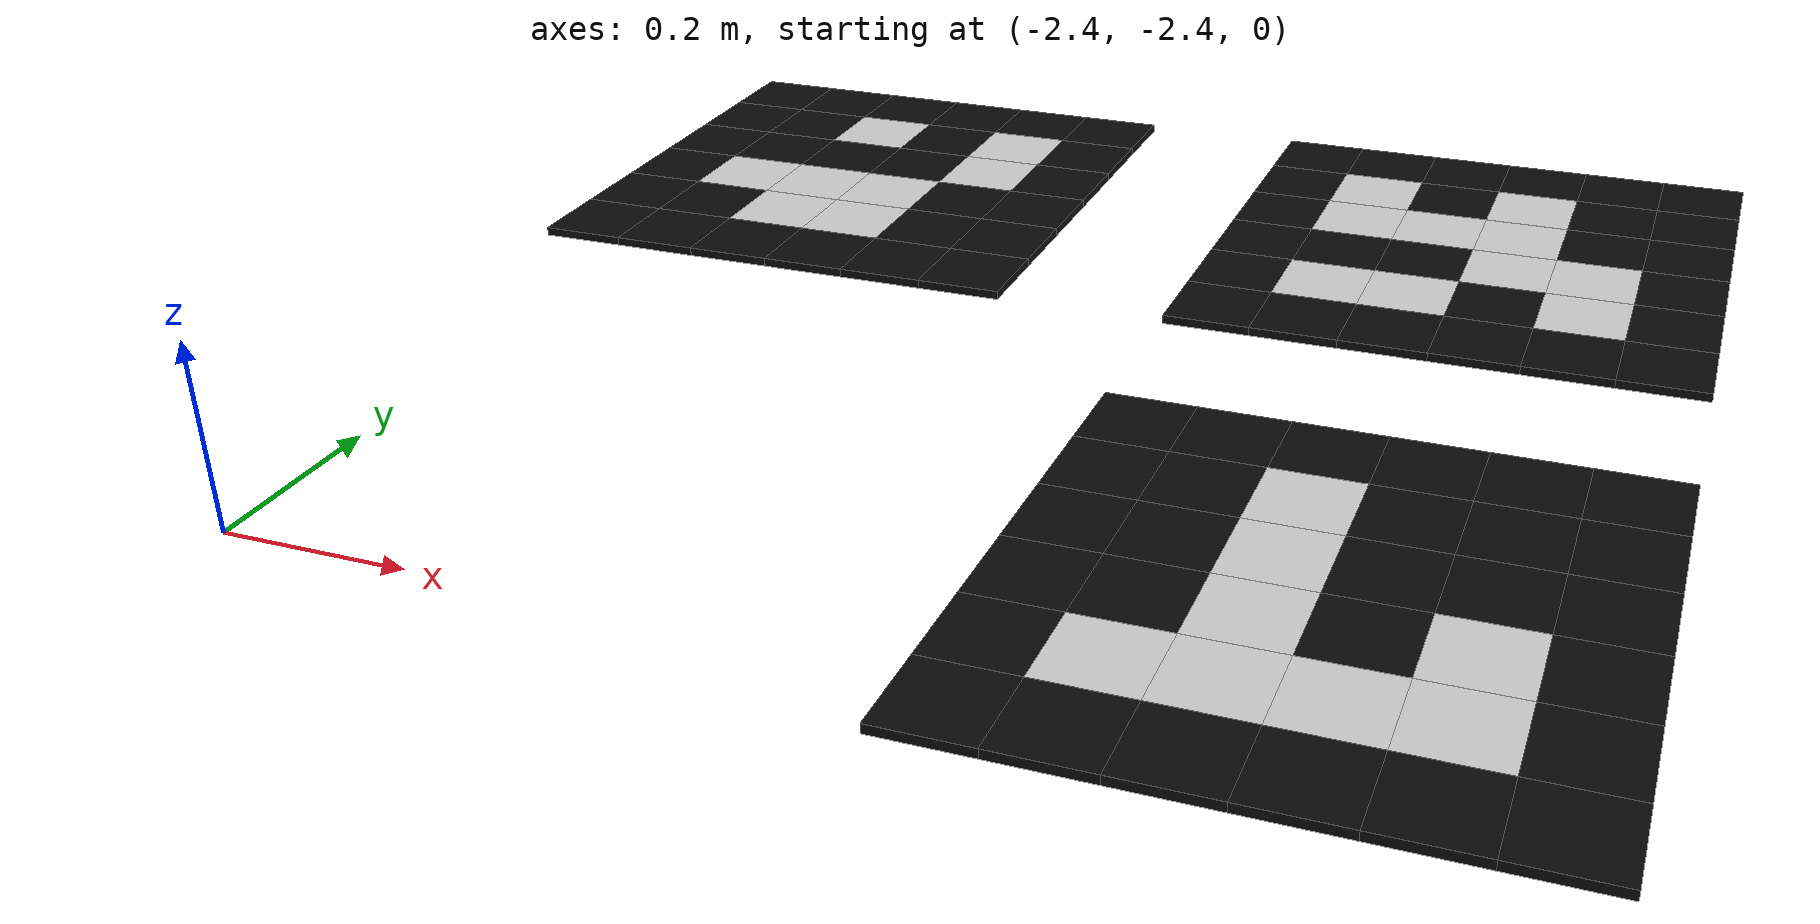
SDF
<sdf version="1.10">
 <world name="uav_world123">
  <model name="aruco_marker_106">
   <pose>-1.3999999999999999 -2.2000000000000002 0.014999999999999999 0 0 0</pose>
   <static>true</static>
   <link name="link">
    <visual name="block_0_0">
     <pose>-0.25 -0.25 0 0 0 0</pose>
     <geometry><box><size>0.10000000000000001 0.10000000000000001 0.01</size></box></geometry>
     <material>
      <ambient>0.0500000007 0.0500000007 0.0500000007 1</ambient>
      <diffuse>0.0500000007 0.0500000007 0.0500000007 1</diffuse>
     </material>
    </visual>
    <visual name="block_0_1">
     <pose>-0.15000000000000002 -0.25 0 0 0 0</pose>
     <geometry><box><size>0.10000000000000001 0.10000000000000001 0.01</size></box></geometry>
     <material>
      <ambient>0.0500000007 0.0500000007 0.0500000007 1</ambient>
      <diffuse>0.0500000007 0.0500000007 0.0500000007 1</diffuse>
     </material>
    </visual>
    <visual name="block_0_2">
     <pose>-0.050000000000000003 -0.25 0 0 0 0</pose>
     <geometry><box><size>0.10000000000000001 0.10000000000000001 0.01</size></box></geometry>
     <material>
      <ambient>0.0500000007 0.0500000007 0.0500000007 1</ambient>
      <diffuse>0.0500000007 0.0500000007 0.0500000007 1</diffuse>
     </material>
    </visual>
    <visual name="block_0_3">
     <pose>0.050000000000000003 -0.25 0 0 0 0</pose>
     <geometry><box><size>0.10000000000000001 0.10000000000000001 0.01</size></box></geometry>
     <material>
      <ambient>0.0500000007 0.0500000007 0.0500000007 1</ambient>
      <diffuse>0.0500000007 0.0500000007 0.0500000007 1</diffuse>
     </material>
    </visual>
    <visual name="block_0_4">
     <pose>0.15000000000000002 -0.25 0 0 0 0</pose>
     <geometry><box><size>0.10000000000000001 0.10000000000000001 0.01</size></box></geometry>
     <material>
      <ambient>0.0500000007 0.0500000007 0.0500000007 1</ambient>
      <diffuse>0.0500000007 0.0500000007 0.0500000007 1</diffuse>
     </material>
    </visual>
    <visual name="block_0_5">
     <pose>0.25 -0.25 0 0 0 0</pose>
     <geometry><box><size>0.10000000000000001 0.10000000000000001 0.01</size></box></geometry>
     <material>
      <ambient>0.0500000007 0.0500000007 0.0500000007 1</ambient>
      <diffuse>0.0500000007 0.0500000007 0.0500000007 1</diffuse>
     </material>
    </visual>
    <visual name="block_1_0">
     <pose>-0.25 -0.15000000000000002 0 0 0 0</pose>
     <geometry><box><size>0.10000000000000001 0.10000000000000001 0.01</size></box></geometry>
     <material>
      <ambient>0.0500000007 0.0500000007 0.0500000007 1</ambient>
      <diffuse>0.0500000007 0.0500000007 0.0500000007 1</diffuse>
     </material>
    </visual>
    <visual name="block_1_1">
     <pose>-0.15000000000000002 -0.15000000000000002 0 0 0 0</pose>
     <geometry><box><size>0.10000000000000001 0.10000000000000001 0.01</size></box></geometry>
     <material>
      <ambient>0.899999976 0.899999976 0.899999976 1</ambient>
      <diffuse>0.899999976 0.899999976 0.899999976 1</diffuse>
     </material>
    </visual>
    <visual name="block_1_2">
     <pose>-0.050000000000000003 -0.15000000000000002 0 0 0 0</pose>
     <geometry><box><size>0.10000000000000001 0.10000000000000001 0.01</size></box></geometry>
     <material>
      <ambient>0.899999976 0.899999976 0.899999976 1</ambient>
      <diffuse>0.899999976 0.899999976 0.899999976 1</diffuse>
     </material>
    </visual>
    <visual name="block_1_3">
     <pose>0.050000000000000003 -0.15000000000000002 0 0 0 0</pose>
     <geometry><box><size>0.10000000000000001 0.10000000000000001 0.01</size></box></geometry>
     <material>
      <ambient>0.899999976 0.899999976 0.899999976 1</ambient>
      <diffuse>0.899999976 0.899999976 0.899999976 1</diffuse>
     </material>
    </visual>
    <visual name="block_1_4">
     <pose>0.15000000000000002 -0.15000000000000002 0 0 0 0</pose>
     <geometry><box><size>0.10000000000000001 0.10000000000000001 0.01</size></box></geometry>
     <material>
      <ambient>0.899999976 0.899999976 0.899999976 1</ambient>
      <diffuse>0.899999976 0.899999976 0.899999976 1</diffuse>
     </material>
    </visual>
    <visual name="block_1_5">
     <pose>0.25 -0.15000000000000002 0 0 0 0</pose>
     <geometry><box><size>0.10000000000000001 0.10000000000000001 0.01</size></box></geometry>
     <material>
      <ambient>0.0500000007 0.0500000007 0.0500000007 1</ambient>
      <diffuse>0.0500000007 0.0500000007 0.0500000007 1</diffuse>
     </material>
    </visual>
    <visual name="block_2_0">
     <pose>-0.25 -0.050000000000000003 0 0 0 0</pose>
     <geometry><box><size>0.10000000000000001 0.10000000000000001 0.01</size></box></geometry>
     <material>
      <ambient>0.0500000007 0.0500000007 0.0500000007 1</ambient>
      <diffuse>0.0500000007 0.0500000007 0.0500000007 1</diffuse>
     </material>
    </visual>
    <visual name="block_2_1">
     <pose>-0.15000000000000002 -0.050000000000000003 0 0 0 0</pose>
     <geometry><box><size>0.10000000000000001 0.10000000000000001 0.01</size></box></geometry>
     <material>
      <ambient>0.0500000007 0.0500000007 0.0500000007 1</ambient>
      <diffuse>0.0500000007 0.0500000007 0.0500000007 1</diffuse>
     </material>
    </visual>
    <visual name="block_2_2">
     <pose>-0.050000000000000003 -0.050000000000000003 0 0 0 0</pose>
     <geometry><box><size>0.10000000000000001 0.10000000000000001 0.01</size></box></geometry>
     <material>
      <ambient>0.899999976 0.899999976 0.899999976 1</ambient>
      <diffuse>0.899999976 0.899999976 0.899999976 1</diffuse>
     </material>
    </visual>
    <visual name="block_2_3">
     <pose>0.050000000000000003 -0.050000000000000003 0 0 0 0</pose>
     <geometry><box><size>0.10000000000000001 0.10000000000000001 0.01</size></box></geometry>
     <material>
      <ambient>0.0500000007 0.0500000007 0.0500000007 1</ambient>
      <diffuse>0.0500000007 0.0500000007 0.0500000007 1</diffuse>
     </material>
    </visual>
    <visual name="block_2_4">
     <pose>0.15000000000000002 -0.050000000000000003 0 0 0 0</pose>
     <geometry><box><size>0.10000000000000001 0.10000000000000001 0.01</size></box></geometry>
     <material>
      <ambient>0.899999976 0.899999976 0.899999976 1</ambient>
      <diffuse>0.899999976 0.899999976 0.899999976 1</diffuse>
     </material>
    </visual>
    <visual name="block_2_5">
     <pose>0.25 -0.050000000000000003 0 0 0 0</pose>
     <geometry><box><size>0.10000000000000001 0.10000000000000001 0.01</size></box></geometry>
     <material>
      <ambient>0.0500000007 0.0500000007 0.0500000007 1</ambient>
      <diffuse>0.0500000007 0.0500000007 0.0500000007 1</diffuse>
     </material>
    </visual>
    <visual name="block_3_0">
     <pose>-0.25 0.050000000000000003 0 0 0 0</pose>
     <geometry><box><size>0.10000000000000001 0.10000000000000001 0.01</size></box></geometry>
     <material>
      <ambient>0.0500000007 0.0500000007 0.0500000007 1</ambient>
      <diffuse>0.0500000007 0.0500000007 0.0500000007 1</diffuse>
     </material>
    </visual>
    <visual name="block_3_1">
     <pose>-0.15000000000000002 0.050000000000000003 0 0 0 0</pose>
     <geometry><box><size>0.10000000000000001 0.10000000000000001 0.01</size></box></geometry>
     <material>
      <ambient>0.0500000007 0.0500000007 0.0500000007 1</ambient>
      <diffuse>0.0500000007 0.0500000007 0.0500000007 1</diffuse>
     </material>
    </visual>
    <visual name="block_3_2">
     <pose>-0.050000000000000003 0.050000000000000003 0 0 0 0</pose>
     <geometry><box><size>0.10000000000000001 0.10000000000000001 0.01</size></box></geometry>
     <material>
      <ambient>0.899999976 0.899999976 0.899999976 1</ambient>
      <diffuse>0.899999976 0.899999976 0.899999976 1</diffuse>
     </material>
    </visual>
    <visual name="block_3_3">
     <pose>0.050000000000000003 0.050000000000000003 0 0 0 0</pose>
     <geometry><box><size>0.10000000000000001 0.10000000000000001 0.01</size></box></geometry>
     <material>
      <ambient>0.0500000007 0.0500000007 0.0500000007 1</ambient>
      <diffuse>0.0500000007 0.0500000007 0.0500000007 1</diffuse>
     </material>
    </visual>
    <visual name="block_3_4">
     <pose>0.15000000000000002 0.050000000000000003 0 0 0 0</pose>
     <geometry><box><size>0.10000000000000001 0.10000000000000001 0.01</size></box></geometry>
     <material>
      <ambient>0.0500000007 0.0500000007 0.0500000007 1</ambient>
      <diffuse>0.0500000007 0.0500000007 0.0500000007 1</diffuse>
     </material>
    </visual>
    <visual name="block_3_5">
     <pose>0.25 0.050000000000000003 0 0 0 0</pose>
     <geometry><box><size>0.10000000000000001 0.10000000000000001 0.01</size></box></geometry>
     <material>
      <ambient>0.0500000007 0.0500000007 0.0500000007 1</ambient>
      <diffuse>0.0500000007 0.0500000007 0.0500000007 1</diffuse>
     </material>
    </visual>
    <visual name="block_4_0">
     <pose>-0.25 0.15000000000000002 0 0 0 0</pose>
     <geometry><box><size>0.10000000000000001 0.10000000000000001 0.01</size></box></geometry>
     <material>
      <ambient>0.0500000007 0.0500000007 0.0500000007 1</ambient>
      <diffuse>0.0500000007 0.0500000007 0.0500000007 1</diffuse>
     </material>
    </visual>
    <visual name="block_4_1">
     <pose>-0.15000000000000002 0.15000000000000002 0 0 0 0</pose>
     <geometry><box><size>0.10000000000000001 0.10000000000000001 0.01</size></box></geometry>
     <material>
      <ambient>0.0500000007 0.0500000007 0.0500000007 1</ambient>
      <diffuse>0.0500000007 0.0500000007 0.0500000007 1</diffuse>
     </material>
    </visual>
    <visual name="block_4_2">
     <pose>-0.050000000000000003 0.15000000000000002 0 0 0 0</pose>
     <geometry><box><size>0.10000000000000001 0.10000000000000001 0.01</size></box></geometry>
     <material>
      <ambient>0.899999976 0.899999976 0.899999976 1</ambient>
      <diffuse>0.899999976 0.899999976 0.899999976 1</diffuse>
     </material>
    </visual>
    <visual name="block_4_3">
     <pose>0.050000000000000003 0.15000000000000002 0 0 0 0</pose>
     <geometry><box><size>0.10000000000000001 0.10000000000000001 0.01</size></box></geometry>
     <material>
      <ambient>0.0500000007 0.0500000007 0.0500000007 1</ambient>
      <diffuse>0.0500000007 0.0500000007 0.0500000007 1</diffuse>
     </material>
    </visual>
    <visual name="block_4_4">
     <pose>0.15000000000000002 0.15000000000000002 0 0 0 0</pose>
     <geometry><box><size>0.10000000000000001 0.10000000000000001 0.01</size></box></geometry>
     <material>
      <ambient>0.0500000007 0.0500000007 0.0500000007 1</ambient>
      <diffuse>0.0500000007 0.0500000007 0.0500000007 1</diffuse>
     </material>
    </visual>
    <visual name="block_4_5">
     <pose>0.25 0.15000000000000002 0 0 0 0</pose>
     <geometry><box><size>0.10000000000000001 0.10000000000000001 0.01</size></box></geometry>
     <material>
      <ambient>0.0500000007 0.0500000007 0.0500000007 1</ambient>
      <diffuse>0.0500000007 0.0500000007 0.0500000007 1</diffuse>
     </material>
    </visual>
    <visual name="block_5_0">
     <pose>-0.25 0.25 0 0 0 0</pose>
     <geometry><box><size>0.10000000000000001 0.10000000000000001 0.01</size></box></geometry>
     <material>
      <ambient>0.0500000007 0.0500000007 0.0500000007 1</ambient>
      <diffuse>0.0500000007 0.0500000007 0.0500000007 1</diffuse>
     </material>
    </visual>
    <visual name="block_5_1">
     <pose>-0.15000000000000002 0.25 0 0 0 0</pose>
     <geometry><box><size>0.10000000000000001 0.10000000000000001 0.01</size></box></geometry>
     <material>
      <ambient>0.0500000007 0.0500000007 0.0500000007 1</ambient>
      <diffuse>0.0500000007 0.0500000007 0.0500000007 1</diffuse>
     </material>
    </visual>
    <visual name="block_5_2">
     <pose>-0.050000000000000003 0.25 0 0 0 0</pose>
     <geometry><box><size>0.10000000000000001 0.10000000000000001 0.01</size></box></geometry>
     <material>
      <ambient>0.0500000007 0.0500000007 0.0500000007 1</ambient>
      <diffuse>0.0500000007 0.0500000007 0.0500000007 1</diffuse>
     </material>
    </visual>
    <visual name="block_5_3">
     <pose>0.050000000000000003 0.25 0 0 0 0</pose>
     <geometry><box><size>0.10000000000000001 0.10000000000000001 0.01</size></box></geometry>
     <material>
      <ambient>0.0500000007 0.0500000007 0.0500000007 1</ambient>
      <diffuse>0.0500000007 0.0500000007 0.0500000007 1</diffuse>
     </material>
    </visual>
    <visual name="block_5_4">
     <pose>0.15000000000000002 0.25 0 0 0 0</pose>
     <geometry><box><size>0.10000000000000001 0.10000000000000001 0.01</size></box></geometry>
     <material>
      <ambient>0.0500000007 0.0500000007 0.0500000007 1</ambient>
      <diffuse>0.0500000007 0.0500000007 0.0500000007 1</diffuse>
     </material>
    </visual>
    <visual name="block_5_5">
     <pose>0.25 0.25 0 0 0 0</pose>
     <geometry><box><size>0.10000000000000001 0.10000000000000001 0.01</size></box></geometry>
     <material>
      <ambient>0.0500000007 0.0500000007 0.0500000007 1</ambient>
      <diffuse>0.0500000007 0.0500000007 0.0500000007 1</diffuse>
     </material>
    </visual>
    <inertial>
     <mass>1</mass>
     <inertia><ixx>1</ixx><ixy>0</ixy><ixz>0</ixz><iyy>1</iyy><iyz>0</iyz><izz>1</izz></inertia>
    </inertial>
   </link>
  </model>
  <model name="aruco_marker_108">
   <pose>-2.2000000000000002 -1.3999999999999999 0.014999999999999999 0 0 0</pose>
   <static>true</static>
   <link name="link">
    <visual name="block_0_0">
     <pose>-0.25 -0.25 0 0 0 0</pose>
     <geometry><box><size>0.10000000000000001 0.10000000000000001 0.01</size></box></geometry>
     <material>
      <ambient>0.0500000007 0.0500000007 0.0500000007 1</ambient>
      <diffuse>0.0500000007 0.0500000007 0.0500000007 1</diffuse>
     </material>
    </visual>
    <visual name="block_0_1">
     <pose>-0.15000000000000002 -0.25 0 0 0 0</pose>
     <geometry><box><size>0.10000000000000001 0.10000000000000001 0.01</size></box></geometry>
     <material>
      <ambient>0.0500000007 0.0500000007 0.0500000007 1</ambient>
      <diffuse>0.0500000007 0.0500000007 0.0500000007 1</diffuse>
     </material>
    </visual>
    <visual name="block_0_2">
     <pose>-0.050000000000000003 -0.25 0 0 0 0</pose>
     <geometry><box><size>0.10000000000000001 0.10000000000000001 0.01</size></box></geometry>
     <material>
      <ambient>0.0500000007 0.0500000007 0.0500000007 1</ambient>
      <diffuse>0.0500000007 0.0500000007 0.0500000007 1</diffuse>
     </material>
    </visual>
    <visual name="block_0_3">
     <pose>0.050000000000000003 -0.25 0 0 0 0</pose>
     <geometry><box><size>0.10000000000000001 0.10000000000000001 0.01</size></box></geometry>
     <material>
      <ambient>0.0500000007 0.0500000007 0.0500000007 1</ambient>
      <diffuse>0.0500000007 0.0500000007 0.0500000007 1</diffuse>
     </material>
    </visual>
    <visual name="block_0_4">
     <pose>0.15000000000000002 -0.25 0 0 0 0</pose>
     <geometry><box><size>0.10000000000000001 0.10000000000000001 0.01</size></box></geometry>
     <material>
      <ambient>0.0500000007 0.0500000007 0.0500000007 1</ambient>
      <diffuse>0.0500000007 0.0500000007 0.0500000007 1</diffuse>
     </material>
    </visual>
    <visual name="block_0_5">
     <pose>0.25 -0.25 0 0 0 0</pose>
     <geometry><box><size>0.10000000000000001 0.10000000000000001 0.01</size></box></geometry>
     <material>
      <ambient>0.0500000007 0.0500000007 0.0500000007 1</ambient>
      <diffuse>0.0500000007 0.0500000007 0.0500000007 1</diffuse>
     </material>
    </visual>
    <visual name="block_1_0">
     <pose>-0.25 -0.15000000000000002 0 0 0 0</pose>
     <geometry><box><size>0.10000000000000001 0.10000000000000001 0.01</size></box></geometry>
     <material>
      <ambient>0.0500000007 0.0500000007 0.0500000007 1</ambient>
      <diffuse>0.0500000007 0.0500000007 0.0500000007 1</diffuse>
     </material>
    </visual>
    <visual name="block_1_1">
     <pose>-0.15000000000000002 -0.15000000000000002 0 0 0 0</pose>
     <geometry><box><size>0.10000000000000001 0.10000000000000001 0.01</size></box></geometry>
     <material>
      <ambient>0.0500000007 0.0500000007 0.0500000007 1</ambient>
      <diffuse>0.0500000007 0.0500000007 0.0500000007 1</diffuse>
     </material>
    </visual>
    <visual name="block_1_2">
     <pose>-0.050000000000000003 -0.15000000000000002 0 0 0 0</pose>
     <geometry><box><size>0.10000000000000001 0.10000000000000001 0.01</size></box></geometry>
     <material>
      <ambient>0.899999976 0.899999976 0.899999976 1</ambient>
      <diffuse>0.899999976 0.899999976 0.899999976 1</diffuse>
     </material>
    </visual>
    <visual name="block_1_3">
     <pose>0.050000000000000003 -0.15000000000000002 0 0 0 0</pose>
     <geometry><box><size>0.10000000000000001 0.10000000000000001 0.01</size></box></geometry>
     <material>
      <ambient>0.899999976 0.899999976 0.899999976 1</ambient>
      <diffuse>0.899999976 0.899999976 0.899999976 1</diffuse>
     </material>
    </visual>
    <visual name="block_1_4">
     <pose>0.15000000000000002 -0.15000000000000002 0 0 0 0</pose>
     <geometry><box><size>0.10000000000000001 0.10000000000000001 0.01</size></box></geometry>
     <material>
      <ambient>0.0500000007 0.0500000007 0.0500000007 1</ambient>
      <diffuse>0.0500000007 0.0500000007 0.0500000007 1</diffuse>
     </material>
    </visual>
    <visual name="block_1_5">
     <pose>0.25 -0.15000000000000002 0 0 0 0</pose>
     <geometry><box><size>0.10000000000000001 0.10000000000000001 0.01</size></box></geometry>
     <material>
      <ambient>0.0500000007 0.0500000007 0.0500000007 1</ambient>
      <diffuse>0.0500000007 0.0500000007 0.0500000007 1</diffuse>
     </material>
    </visual>
    <visual name="block_2_0">
     <pose>-0.25 -0.050000000000000003 0 0 0 0</pose>
     <geometry><box><size>0.10000000000000001 0.10000000000000001 0.01</size></box></geometry>
     <material>
      <ambient>0.0500000007 0.0500000007 0.0500000007 1</ambient>
      <diffuse>0.0500000007 0.0500000007 0.0500000007 1</diffuse>
     </material>
    </visual>
    <visual name="block_2_1">
     <pose>-0.15000000000000002 -0.050000000000000003 0 0 0 0</pose>
     <geometry><box><size>0.10000000000000001 0.10000000000000001 0.01</size></box></geometry>
     <material>
      <ambient>0.899999976 0.899999976 0.899999976 1</ambient>
      <diffuse>0.899999976 0.899999976 0.899999976 1</diffuse>
     </material>
    </visual>
    <visual name="block_2_2">
     <pose>-0.050000000000000003 -0.050000000000000003 0 0 0 0</pose>
     <geometry><box><size>0.10000000000000001 0.10000000000000001 0.01</size></box></geometry>
     <material>
      <ambient>0.899999976 0.899999976 0.899999976 1</ambient>
      <diffuse>0.899999976 0.899999976 0.899999976 1</diffuse>
     </material>
    </visual>
    <visual name="block_2_3">
     <pose>0.050000000000000003 -0.050000000000000003 0 0 0 0</pose>
     <geometry><box><size>0.10000000000000001 0.10000000000000001 0.01</size></box></geometry>
     <material>
      <ambient>0.899999976 0.899999976 0.899999976 1</ambient>
      <diffuse>0.899999976 0.899999976 0.899999976 1</diffuse>
     </material>
    </visual>
    <visual name="block_2_4">
     <pose>0.15000000000000002 -0.050000000000000003 0 0 0 0</pose>
     <geometry><box><size>0.10000000000000001 0.10000000000000001 0.01</size></box></geometry>
     <material>
      <ambient>0.0500000007 0.0500000007 0.0500000007 1</ambient>
      <diffuse>0.0500000007 0.0500000007 0.0500000007 1</diffuse>
     </material>
    </visual>
    <visual name="block_2_5">
     <pose>0.25 -0.050000000000000003 0 0 0 0</pose>
     <geometry><box><size>0.10000000000000001 0.10000000000000001 0.01</size></box></geometry>
     <material>
      <ambient>0.0500000007 0.0500000007 0.0500000007 1</ambient>
      <diffuse>0.0500000007 0.0500000007 0.0500000007 1</diffuse>
     </material>
    </visual>
    <visual name="block_3_0">
     <pose>-0.25 0.050000000000000003 0 0 0 0</pose>
     <geometry><box><size>0.10000000000000001 0.10000000000000001 0.01</size></box></geometry>
     <material>
      <ambient>0.0500000007 0.0500000007 0.0500000007 1</ambient>
      <diffuse>0.0500000007 0.0500000007 0.0500000007 1</diffuse>
     </material>
    </visual>
    <visual name="block_3_1">
     <pose>-0.15000000000000002 0.050000000000000003 0 0 0 0</pose>
     <geometry><box><size>0.10000000000000001 0.10000000000000001 0.01</size></box></geometry>
     <material>
      <ambient>0.0500000007 0.0500000007 0.0500000007 1</ambient>
      <diffuse>0.0500000007 0.0500000007 0.0500000007 1</diffuse>
     </material>
    </visual>
    <visual name="block_3_2">
     <pose>-0.050000000000000003 0.050000000000000003 0 0 0 0</pose>
     <geometry><box><size>0.10000000000000001 0.10000000000000001 0.01</size></box></geometry>
     <material>
      <ambient>0.0500000007 0.0500000007 0.0500000007 1</ambient>
      <diffuse>0.0500000007 0.0500000007 0.0500000007 1</diffuse>
     </material>
    </visual>
    <visual name="block_3_3">
     <pose>0.050000000000000003 0.050000000000000003 0 0 0 0</pose>
     <geometry><box><size>0.10000000000000001 0.10000000000000001 0.01</size></box></geometry>
     <material>
      <ambient>0.0500000007 0.0500000007 0.0500000007 1</ambient>
      <diffuse>0.0500000007 0.0500000007 0.0500000007 1</diffuse>
     </material>
    </visual>
    <visual name="block_3_4">
     <pose>0.15000000000000002 0.050000000000000003 0 0 0 0</pose>
     <geometry><box><size>0.10000000000000001 0.10000000000000001 0.01</size></box></geometry>
     <material>
      <ambient>0.899999976 0.899999976 0.899999976 1</ambient>
      <diffuse>0.899999976 0.899999976 0.899999976 1</diffuse>
     </material>
    </visual>
    <visual name="block_3_5">
     <pose>0.25 0.050000000000000003 0 0 0 0</pose>
     <geometry><box><size>0.10000000000000001 0.10000000000000001 0.01</size></box></geometry>
     <material>
      <ambient>0.0500000007 0.0500000007 0.0500000007 1</ambient>
      <diffuse>0.0500000007 0.0500000007 0.0500000007 1</diffuse>
     </material>
    </visual>
    <visual name="block_4_0">
     <pose>-0.25 0.15000000000000002 0 0 0 0</pose>
     <geometry><box><size>0.10000000000000001 0.10000000000000001 0.01</size></box></geometry>
     <material>
      <ambient>0.0500000007 0.0500000007 0.0500000007 1</ambient>
      <diffuse>0.0500000007 0.0500000007 0.0500000007 1</diffuse>
     </material>
    </visual>
    <visual name="block_4_1">
     <pose>-0.15000000000000002 0.15000000000000002 0 0 0 0</pose>
     <geometry><box><size>0.10000000000000001 0.10000000000000001 0.01</size></box></geometry>
     <material>
      <ambient>0.0500000007 0.0500000007 0.0500000007 1</ambient>
      <diffuse>0.0500000007 0.0500000007 0.0500000007 1</diffuse>
     </material>
    </visual>
    <visual name="block_4_2">
     <pose>-0.050000000000000003 0.15000000000000002 0 0 0 0</pose>
     <geometry><box><size>0.10000000000000001 0.10000000000000001 0.01</size></box></geometry>
     <material>
      <ambient>0.899999976 0.899999976 0.899999976 1</ambient>
      <diffuse>0.899999976 0.899999976 0.899999976 1</diffuse>
     </material>
    </visual>
    <visual name="block_4_3">
     <pose>0.050000000000000003 0.15000000000000002 0 0 0 0</pose>
     <geometry><box><size>0.10000000000000001 0.10000000000000001 0.01</size></box></geometry>
     <material>
      <ambient>0.0500000007 0.0500000007 0.0500000007 1</ambient>
      <diffuse>0.0500000007 0.0500000007 0.0500000007 1</diffuse>
     </material>
    </visual>
    <visual name="block_4_4">
     <pose>0.15000000000000002 0.15000000000000002 0 0 0 0</pose>
     <geometry><box><size>0.10000000000000001 0.10000000000000001 0.01</size></box></geometry>
     <material>
      <ambient>0.899999976 0.899999976 0.899999976 1</ambient>
      <diffuse>0.899999976 0.899999976 0.899999976 1</diffuse>
     </material>
    </visual>
    <visual name="block_4_5">
     <pose>0.25 0.15000000000000002 0 0 0 0</pose>
     <geometry><box><size>0.10000000000000001 0.10000000000000001 0.01</size></box></geometry>
     <material>
      <ambient>0.0500000007 0.0500000007 0.0500000007 1</ambient>
      <diffuse>0.0500000007 0.0500000007 0.0500000007 1</diffuse>
     </material>
    </visual>
    <visual name="block_5_0">
     <pose>-0.25 0.25 0 0 0 0</pose>
     <geometry><box><size>0.10000000000000001 0.10000000000000001 0.01</size></box></geometry>
     <material>
      <ambient>0.0500000007 0.0500000007 0.0500000007 1</ambient>
      <diffuse>0.0500000007 0.0500000007 0.0500000007 1</diffuse>
     </material>
    </visual>
    <visual name="block_5_1">
     <pose>-0.15000000000000002 0.25 0 0 0 0</pose>
     <geometry><box><size>0.10000000000000001 0.10000000000000001 0.01</size></box></geometry>
     <material>
      <ambient>0.0500000007 0.0500000007 0.0500000007 1</ambient>
      <diffuse>0.0500000007 0.0500000007 0.0500000007 1</diffuse>
     </material>
    </visual>
    <visual name="block_5_2">
     <pose>-0.050000000000000003 0.25 0 0 0 0</pose>
     <geometry><box><size>0.10000000000000001 0.10000000000000001 0.01</size></box></geometry>
     <material>
      <ambient>0.0500000007 0.0500000007 0.0500000007 1</ambient>
      <diffuse>0.0500000007 0.0500000007 0.0500000007 1</diffuse>
     </material>
    </visual>
    <visual name="block_5_3">
     <pose>0.050000000000000003 0.25 0 0 0 0</pose>
     <geometry><box><size>0.10000000000000001 0.10000000000000001 0.01</size></box></geometry>
     <material>
      <ambient>0.0500000007 0.0500000007 0.0500000007 1</ambient>
      <diffuse>0.0500000007 0.0500000007 0.0500000007 1</diffuse>
     </material>
    </visual>
    <visual name="block_5_4">
     <pose>0.15000000000000002 0.25 0 0 0 0</pose>
     <geometry><box><size>0.10000000000000001 0.10000000000000001 0.01</size></box></geometry>
     <material>
      <ambient>0.0500000007 0.0500000007 0.0500000007 1</ambient>
      <diffuse>0.0500000007 0.0500000007 0.0500000007 1</diffuse>
     </material>
    </visual>
    <visual name="block_5_5">
     <pose>0.25 0.25 0 0 0 0</pose>
     <geometry><box><size>0.10000000000000001 0.10000000000000001 0.01</size></box></geometry>
     <material>
      <ambient>0.0500000007 0.0500000007 0.0500000007 1</ambient>
      <diffuse>0.0500000007 0.0500000007 0.0500000007 1</diffuse>
     </material>
    </visual>
    <inertial>
     <mass>1</mass>
     <inertia><ixx>1</ixx><ixy>0</ixy><ixz>0</ixz><iyy>1</iyy><iyz>0</iyz><izz>1</izz></inertia>
    </inertial>
   </link>
  </model>
  <model name="aruco_marker_109">
   <pose>-1.3999999999999999 -1.3999999999999999 0.014999999999999999 0 0 0</pose>
   <static>true</static>
   <link name="link">
    <visual name="block_0_0">
     <pose>-0.25 -0.25 0 0 0 0</pose>
     <geometry><box><size>0.10000000000000001 0.10000000000000001 0.01</size></box></geometry>
     <material>
      <ambient>0.0500000007 0.0500000007 0.0500000007 1</ambient>
      <diffuse>0.0500000007 0.0500000007 0.0500000007 1</diffuse>
     </material>
    </visual>
    <visual name="block_0_1">
     <pose>-0.15000000000000002 -0.25 0 0 0 0</pose>
     <geometry><box><size>0.10000000000000001 0.10000000000000001 0.01</size></box></geometry>
     <material>
      <ambient>0.0500000007 0.0500000007 0.0500000007 1</ambient>
      <diffuse>0.0500000007 0.0500000007 0.0500000007 1</diffuse>
     </material>
    </visual>
    <visual name="block_0_2">
     <pose>-0.050000000000000003 -0.25 0 0 0 0</pose>
     <geometry><box><size>0.10000000000000001 0.10000000000000001 0.01</size></box></geometry>
     <material>
      <ambient>0.0500000007 0.0500000007 0.0500000007 1</ambient>
      <diffuse>0.0500000007 0.0500000007 0.0500000007 1</diffuse>
     </material>
    </visual>
    <visual name="block_0_3">
     <pose>0.050000000000000003 -0.25 0 0 0 0</pose>
     <geometry><box><size>0.10000000000000001 0.10000000000000001 0.01</size></box></geometry>
     <material>
      <ambient>0.0500000007 0.0500000007 0.0500000007 1</ambient>
      <diffuse>0.0500000007 0.0500000007 0.0500000007 1</diffuse>
     </material>
    </visual>
    <visual name="block_0_4">
     <pose>0.15000000000000002 -0.25 0 0 0 0</pose>
     <geometry><box><size>0.10000000000000001 0.10000000000000001 0.01</size></box></geometry>
     <material>
      <ambient>0.0500000007 0.0500000007 0.0500000007 1</ambient>
      <diffuse>0.0500000007 0.0500000007 0.0500000007 1</diffuse>
     </material>
    </visual>
    <visual name="block_0_5">
     <pose>0.25 -0.25 0 0 0 0</pose>
     <geometry><box><size>0.10000000000000001 0.10000000000000001 0.01</size></box></geometry>
     <material>
      <ambient>0.0500000007 0.0500000007 0.0500000007 1</ambient>
      <diffuse>0.0500000007 0.0500000007 0.0500000007 1</diffuse>
     </material>
    </visual>
    <visual name="block_1_0">
     <pose>-0.25 -0.15000000000000002 0 0 0 0</pose>
     <geometry><box><size>0.10000000000000001 0.10000000000000001 0.01</size></box></geometry>
     <material>
      <ambient>0.0500000007 0.0500000007 0.0500000007 1</ambient>
      <diffuse>0.0500000007 0.0500000007 0.0500000007 1</diffuse>
     </material>
    </visual>
    <visual name="block_1_1">
     <pose>-0.15000000000000002 -0.15000000000000002 0 0 0 0</pose>
     <geometry><box><size>0.10000000000000001 0.10000000000000001 0.01</size></box></geometry>
     <material>
      <ambient>0.899999976 0.899999976 0.899999976 1</ambient>
      <diffuse>0.899999976 0.899999976 0.899999976 1</diffuse>
     </material>
    </visual>
    <visual name="block_1_2">
     <pose>-0.050000000000000003 -0.15000000000000002 0 0 0 0</pose>
     <geometry><box><size>0.10000000000000001 0.10000000000000001 0.01</size></box></geometry>
     <material>
      <ambient>0.899999976 0.899999976 0.899999976 1</ambient>
      <diffuse>0.899999976 0.899999976 0.899999976 1</diffuse>
     </material>
    </visual>
    <visual name="block_1_3">
     <pose>0.050000000000000003 -0.15000000000000002 0 0 0 0</pose>
     <geometry><box><size>0.10000000000000001 0.10000000000000001 0.01</size></box></geometry>
     <material>
      <ambient>0.0500000007 0.0500000007 0.0500000007 1</ambient>
      <diffuse>0.0500000007 0.0500000007 0.0500000007 1</diffuse>
     </material>
    </visual>
    <visual name="block_1_4">
     <pose>0.15000000000000002 -0.15000000000000002 0 0 0 0</pose>
     <geometry><box><size>0.10000000000000001 0.10000000000000001 0.01</size></box></geometry>
     <material>
      <ambient>0.899999976 0.899999976 0.899999976 1</ambient>
      <diffuse>0.899999976 0.899999976 0.899999976 1</diffuse>
     </material>
    </visual>
    <visual name="block_1_5">
     <pose>0.25 -0.15000000000000002 0 0 0 0</pose>
     <geometry><box><size>0.10000000000000001 0.10000000000000001 0.01</size></box></geometry>
     <material>
      <ambient>0.0500000007 0.0500000007 0.0500000007 1</ambient>
      <diffuse>0.0500000007 0.0500000007 0.0500000007 1</diffuse>
     </material>
    </visual>
    <visual name="block_2_0">
     <pose>-0.25 -0.050000000000000003 0 0 0 0</pose>
     <geometry><box><size>0.10000000000000001 0.10000000000000001 0.01</size></box></geometry>
     <material>
      <ambient>0.0500000007 0.0500000007 0.0500000007 1</ambient>
      <diffuse>0.0500000007 0.0500000007 0.0500000007 1</diffuse>
     </material>
    </visual>
    <visual name="block_2_1">
     <pose>-0.15000000000000002 -0.050000000000000003 0 0 0 0</pose>
     <geometry><box><size>0.10000000000000001 0.10000000000000001 0.01</size></box></geometry>
     <material>
      <ambient>0.0500000007 0.0500000007 0.0500000007 1</ambient>
      <diffuse>0.0500000007 0.0500000007 0.0500000007 1</diffuse>
     </material>
    </visual>
    <visual name="block_2_2">
     <pose>-0.050000000000000003 -0.050000000000000003 0 0 0 0</pose>
     <geometry><box><size>0.10000000000000001 0.10000000000000001 0.01</size></box></geometry>
     <material>
      <ambient>0.0500000007 0.0500000007 0.0500000007 1</ambient>
      <diffuse>0.0500000007 0.0500000007 0.0500000007 1</diffuse>
     </material>
    </visual>
    <visual name="block_2_3">
     <pose>0.050000000000000003 -0.050000000000000003 0 0 0 0</pose>
     <geometry><box><size>0.10000000000000001 0.10000000000000001 0.01</size></box></geometry>
     <material>
      <ambient>0.899999976 0.899999976 0.899999976 1</ambient>
      <diffuse>0.899999976 0.899999976 0.899999976 1</diffuse>
     </material>
    </visual>
    <visual name="block_2_4">
     <pose>0.15000000000000002 -0.050000000000000003 0 0 0 0</pose>
     <geometry><box><size>0.10000000000000001 0.10000000000000001 0.01</size></box></geometry>
     <material>
      <ambient>0.899999976 0.899999976 0.899999976 1</ambient>
      <diffuse>0.899999976 0.899999976 0.899999976 1</diffuse>
     </material>
    </visual>
    <visual name="block_2_5">
     <pose>0.25 -0.050000000000000003 0 0 0 0</pose>
     <geometry><box><size>0.10000000000000001 0.10000000000000001 0.01</size></box></geometry>
     <material>
      <ambient>0.0500000007 0.0500000007 0.0500000007 1</ambient>
      <diffuse>0.0500000007 0.0500000007 0.0500000007 1</diffuse>
     </material>
    </visual>
    <visual name="block_3_0">
     <pose>-0.25 0.050000000000000003 0 0 0 0</pose>
     <geometry><box><size>0.10000000000000001 0.10000000000000001 0.01</size></box></geometry>
     <material>
      <ambient>0.0500000007 0.0500000007 0.0500000007 1</ambient>
      <diffuse>0.0500000007 0.0500000007 0.0500000007 1</diffuse>
     </material>
    </visual>
    <visual name="block_3_1">
     <pose>-0.15000000000000002 0.050000000000000003 0 0 0 0</pose>
     <geometry><box><size>0.10000000000000001 0.10000000000000001 0.01</size></box></geometry>
     <material>
      <ambient>0.899999976 0.899999976 0.899999976 1</ambient>
      <diffuse>0.899999976 0.899999976 0.899999976 1</diffuse>
     </material>
    </visual>
    <visual name="block_3_2">
     <pose>-0.050000000000000003 0.050000000000000003 0 0 0 0</pose>
     <geometry><box><size>0.10000000000000001 0.10000000000000001 0.01</size></box></geometry>
     <material>
      <ambient>0.899999976 0.899999976 0.899999976 1</ambient>
      <diffuse>0.899999976 0.899999976 0.899999976 1</diffuse>
     </material>
    </visual>
    <visual name="block_3_3">
     <pose>0.050000000000000003 0.050000000000000003 0 0 0 0</pose>
     <geometry><box><size>0.10000000000000001 0.10000000000000001 0.01</size></box></geometry>
     <material>
      <ambient>0.899999976 0.899999976 0.899999976 1</ambient>
      <diffuse>0.899999976 0.899999976 0.899999976 1</diffuse>
     </material>
    </visual>
    <visual name="block_3_4">
     <pose>0.15000000000000002 0.050000000000000003 0 0 0 0</pose>
     <geometry><box><size>0.10000000000000001 0.10000000000000001 0.01</size></box></geometry>
     <material>
      <ambient>0.0500000007 0.0500000007 0.0500000007 1</ambient>
      <diffuse>0.0500000007 0.0500000007 0.0500000007 1</diffuse>
     </material>
    </visual>
    <visual name="block_3_5">
     <pose>0.25 0.050000000000000003 0 0 0 0</pose>
     <geometry><box><size>0.10000000000000001 0.10000000000000001 0.01</size></box></geometry>
     <material>
      <ambient>0.0500000007 0.0500000007 0.0500000007 1</ambient>
      <diffuse>0.0500000007 0.0500000007 0.0500000007 1</diffuse>
     </material>
    </visual>
    <visual name="block_4_0">
     <pose>-0.25 0.15000000000000002 0 0 0 0</pose>
     <geometry><box><size>0.10000000000000001 0.10000000000000001 0.01</size></box></geometry>
     <material>
      <ambient>0.0500000007 0.0500000007 0.0500000007 1</ambient>
      <diffuse>0.0500000007 0.0500000007 0.0500000007 1</diffuse>
     </material>
    </visual>
    <visual name="block_4_1">
     <pose>-0.15000000000000002 0.15000000000000002 0 0 0 0</pose>
     <geometry><box><size>0.10000000000000001 0.10000000000000001 0.01</size></box></geometry>
     <material>
      <ambient>0.899999976 0.899999976 0.899999976 1</ambient>
      <diffuse>0.899999976 0.899999976 0.899999976 1</diffuse>
     </material>
    </visual>
    <visual name="block_4_2">
     <pose>-0.050000000000000003 0.15000000000000002 0 0 0 0</pose>
     <geometry><box><size>0.10000000000000001 0.10000000000000001 0.01</size></box></geometry>
     <material>
      <ambient>0.0500000007 0.0500000007 0.0500000007 1</ambient>
      <diffuse>0.0500000007 0.0500000007 0.0500000007 1</diffuse>
     </material>
    </visual>
    <visual name="block_4_3">
     <pose>0.050000000000000003 0.15000000000000002 0 0 0 0</pose>
     <geometry><box><size>0.10000000000000001 0.10000000000000001 0.01</size></box></geometry>
     <material>
      <ambient>0.899999976 0.899999976 0.899999976 1</ambient>
      <diffuse>0.899999976 0.899999976 0.899999976 1</diffuse>
     </material>
    </visual>
    <visual name="block_4_4">
     <pose>0.15000000000000002 0.15000000000000002 0 0 0 0</pose>
     <geometry><box><size>0.10000000000000001 0.10000000000000001 0.01</size></box></geometry>
     <material>
      <ambient>0.0500000007 0.0500000007 0.0500000007 1</ambient>
      <diffuse>0.0500000007 0.0500000007 0.0500000007 1</diffuse>
     </material>
    </visual>
    <visual name="block_4_5">
     <pose>0.25 0.15000000000000002 0 0 0 0</pose>
     <geometry><box><size>0.10000000000000001 0.10000000000000001 0.01</size></box></geometry>
     <material>
      <ambient>0.0500000007 0.0500000007 0.0500000007 1</ambient>
      <diffuse>0.0500000007 0.0500000007 0.0500000007 1</diffuse>
     </material>
    </visual>
    <visual name="block_5_0">
     <pose>-0.25 0.25 0 0 0 0</pose>
     <geometry><box><size>0.10000000000000001 0.10000000000000001 0.01</size></box></geometry>
     <material>
      <ambient>0.0500000007 0.0500000007 0.0500000007 1</ambient>
      <diffuse>0.0500000007 0.0500000007 0.0500000007 1</diffuse>
     </material>
    </visual>
    <visual name="block_5_1">
     <pose>-0.15000000000000002 0.25 0 0 0 0</pose>
     <geometry><box><size>0.10000000000000001 0.10000000000000001 0.01</size></box></geometry>
     <material>
      <ambient>0.0500000007 0.0500000007 0.0500000007 1</ambient>
      <diffuse>0.0500000007 0.0500000007 0.0500000007 1</diffuse>
     </material>
    </visual>
    <visual name="block_5_2">
     <pose>-0.050000000000000003 0.25 0 0 0 0</pose>
     <geometry><box><size>0.10000000000000001 0.10000000000000001 0.01</size></box></geometry>
     <material>
      <ambient>0.0500000007 0.0500000007 0.0500000007 1</ambient>
      <diffuse>0.0500000007 0.0500000007 0.0500000007 1</diffuse>
     </material>
    </visual>
    <visual name="block_5_3">
     <pose>0.050000000000000003 0.25 0 0 0 0</pose>
     <geometry><box><size>0.10000000000000001 0.10000000000000001 0.01</size></box></geometry>
     <material>
      <ambient>0.0500000007 0.0500000007 0.0500000007 1</ambient>
      <diffuse>0.0500000007 0.0500000007 0.0500000007 1</diffuse>
     </material>
    </visual>
    <visual name="block_5_4">
     <pose>0.15000000000000002 0.25 0 0 0 0</pose>
     <geometry><box><size>0.10000000000000001 0.10000000000000001 0.01</size></box></geometry>
     <material>
      <ambient>0.0500000007 0.0500000007 0.0500000007 1</ambient>
      <diffuse>0.0500000007 0.0500000007 0.0500000007 1</diffuse>
     </material>
    </visual>
    <visual name="block_5_5">
     <pose>0.25 0.25 0 0 0 0</pose>
     <geometry><box><size>0.10000000000000001 0.10000000000000001 0.01</size></box></geometry>
     <material>
      <ambient>0.0500000007 0.0500000007 0.0500000007 1</ambient>
      <diffuse>0.0500000007 0.0500000007 0.0500000007 1</diffuse>
     </material>
    </visual>
    <inertial>
     <mass>1</mass>
     <inertia><ixx>1</ixx><ixy>0</ixy><ixz>0</ixz><iyy>1</iyy><iyz>0</iyz><izz>1</izz></inertia>
    </inertial>
   </link>
  </model>
  <model name="grasspatch_0">
   <static>true</static>
   <link name="link">
    <collision name="collision">
     <geometry><plane><normal>0 0 1</normal><size>15 15</size></plane></geometry>
     <surface><friction><ode><mu>0.5</mu><mu2>0.5</mu2></ode></friction></surface>
    </collision>
    <visual name="visual_s10">
     <cast_shadows>false</cast_shadows>
     <geometry><plane><normal>0 0 1</normal><size>15 15</size></plane></geometry>
     <material>
      <diffuse>1 1 1 1</diffuse>
      <specular>1 1 1 1</specular>
      <pbr>
       <metal>
        <albedo_map>materials/textures/grass_dry.png</albedo_map>
        <normal_map>materials/textures/grass_dry.png</normal_map>
       </metal>
      </pbr>
     </material>
    </visual>
    <inertial>
     <mass>1</mass>
     <inertia><ixx>1</ixx><ixy>0</ixy><ixz>0</ixz><iyy>1</iyy><iyz>0</iyz><izz>1</izz></inertia>
    </inertial>
   </link>
   <pose>7.4455161405687189 6.4735388272228835 0 0 0 0</pose>
  </model>
 </world>
</sdf>
